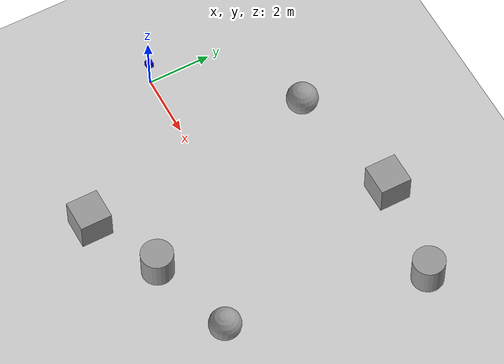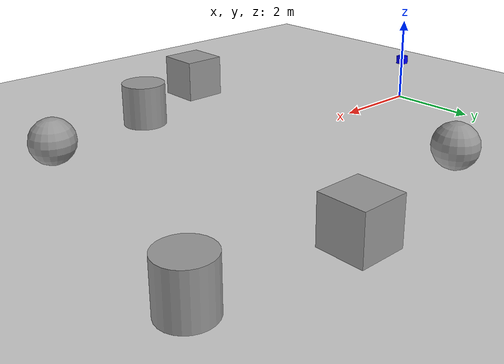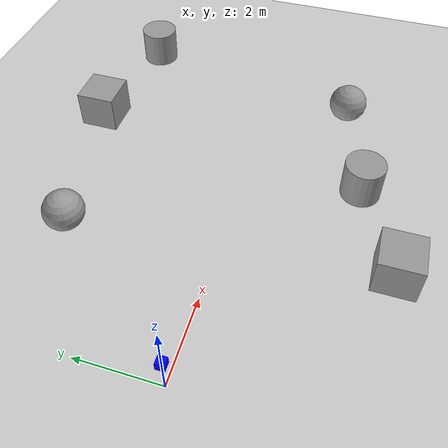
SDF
<sdf version='1.7'>
  <world name='default'>
    <light name='sun' type='directional'>
      <cast_shadows>1</cast_shadows>
      <pose>0 0 10 0 -0 0</pose>
      <diffuse>0.8 0.8 0.8 1</diffuse>
      <specular>0.2 0.2 0.2 1</specular>
      <attenuation>
        <range>1000</range>
        <constant>0.9</constant>
        <linear>0.01</linear>
        <quadratic>0.001</quadratic>
      </attenuation>
      <direction>-0.5 0.1 -0.9</direction>
      <spot>
        <inner_angle>0</inner_angle>
        <outer_angle>0</outer_angle>
        <falloff>0</falloff>
      </spot>
    </light>
    <model name='ground_plane'>
      <static>1</static>
      <link name='link'>
        <collision name='collision'>
          <geometry>
            <plane>
              <normal>0 0 1</normal>
              <size>100 100</size>
            </plane>
          </geometry>
          <surface>
            <contact>
              <collide_bitmask>65535</collide_bitmask>
              <ode/>
            </contact>
            <friction>
              <ode>
                <mu>100</mu>
                <mu2>50</mu2>
              </ode>
              <torsional>
                <ode/>
              </torsional>
            </friction>
            <bounce/>
          </surface>
          <max_contacts>10</max_contacts>
        </collision>
        <visual name='visual'>
          <cast_shadows>0</cast_shadows>
          <geometry>
            <plane>
              <normal>0 0 1</normal>
              <size>100 100</size>
            </plane>
          </geometry>
          <material>
            <script>
              <uri>file://media/materials/scripts/gazebo.material</uri>
              <name>Gazebo/Grey</name>
            </script>
          </material>
        </visual>
        <self_collide>0</self_collide>
        <enable_wind>0</enable_wind>
        <kinematic>0</kinematic>
      </link>
    </model>
    <gravity>0 0 -9.8</gravity>
    <magnetic_field>6e-06 2.3e-05 -4.2e-05</magnetic_field>
    <atmosphere type='adiabatic'/>
    <physics type='ode'>
      <max_step_size>0.001</max_step_size>
      <real_time_factor>1</real_time_factor>
      <real_time_update_rate>1000</real_time_update_rate>
    </physics>
    <scene>
      <ambient>0.4 0.4 0.4 1</ambient>
      <background>0.7 0.7 0.7 1</background>
      <shadows>1</shadows>
    </scene>
    <wind/>
    <spherical_coordinates>
      <surface_model>EARTH_WGS84</surface_model>
      <latitude_deg>0</latitude_deg>
      <longitude_deg>0</longitude_deg>
      <elevation>0</elevation>
      <heading_deg>0</heading_deg>
    </spherical_coordinates>
    <model name='unit_sphere'>
      <pose>3.01659 3.66741 0.5 0 -0 0</pose>
      <link name='link'>
        <inertial>
          <mass>1</mass>
          <inertia>
            <ixx>0.001</ixx>
            <iyy>0.001</iyy>
            <izz>0.001</izz>
            <ixy>0.0</ixy>
            <ixz>0.0</ixz>
            <iyz>0.0</iyz>
          </inertia>
          <pose>0 0 0 0 -0 0</pose>
        </inertial>
        <collision name='collision'>
          <geometry>
            <sphere>
              <radius>0.5</radius>
            </sphere>
          </geometry>
          <max_contacts>10</max_contacts>
          <surface>
            <contact>
              <ode/>
            </contact>
            <bounce/>
            <friction>
              <torsional>
                <ode/>
              </torsional>
              <ode/>
            </friction>
          </surface>
        </collision>
        <visual name='visual'>
          <geometry>
            <sphere>
              <radius>0.5</radius>
            </sphere>
          </geometry>
          <material>
            <script>
              <name>Gazebo/Grey</name>
              <uri>file://media/materials/scripts/gazebo.material</uri>
            </script>
          </material>
        </visual>
        <self_collide>0</self_collide>
        <enable_wind>0</enable_wind>
        <kinematic>0</kinematic>
      </link>
    </model>
    <model name='unit_box'>
      <pose>3.7705 -3.93623 0.5 0 -0 0</pose>
      <link name='link'>
        <inertial>
          <mass>1</mass>
          <inertia>
            <ixx>0.166667</ixx>
            <ixy>0</ixy>
            <ixz>0</ixz>
            <iyy>0.166667</iyy>
            <iyz>0</iyz>
            <izz>0.166667</izz>
          </inertia>
          <pose>0 0 0 0 -0 0</pose>
        </inertial>
        <collision name='collision'>
          <geometry>
            <box>
              <size>1 1 1</size>
            </box>
          </geometry>
          <max_contacts>10</max_contacts>
          <surface>
            <contact>
              <ode/>
            </contact>
            <bounce/>
            <friction>
              <torsional>
                <ode/>
              </torsional>
              <ode/>
            </friction>
          </surface>
        </collision>
        <visual name='visual'>
          <geometry>
            <box>
              <size>1 1 1</size>
            </box>
          </geometry>
          <material>
            <script>
              <name>Gazebo/Grey</name>
              <uri>file://media/materials/scripts/gazebo.material</uri>
            </script>
          </material>
        </visual>
        <self_collide>0</self_collide>
        <enable_wind>0</enable_wind>
        <kinematic>0</kinematic>
      </link>
    </model>
    <model name='unit_cylinder'>
      <pose>6.05207 -2.85998 0.5 0 -0 0</pose>
      <link name='link'>
        <inertial>
          <mass>1</mass>
          <inertia>
            <ixx>0.145833</ixx>
            <ixy>0</ixy>
            <ixz>0</ixz>
            <iyy>0.145833</iyy>
            <iyz>0</iyz>
            <izz>0.125</izz>
          </inertia>
          <pose>0 0 0 0 -0 0</pose>
        </inertial>
        <collision name='collision'>
          <geometry>
            <cylinder>
              <radius>0.5</radius>
              <length>1</length>
            </cylinder>
          </geometry>
          <max_contacts>10</max_contacts>
          <surface>
            <contact>
              <ode/>
            </contact>
            <bounce/>
            <friction>
              <torsional>
                <ode/>
              </torsional>
              <ode/>
            </friction>
          </surface>
        </collision>
        <visual name='visual'>
          <geometry>
            <cylinder>
              <radius>0.5</radius>
              <length>1</length>
            </cylinder>
          </geometry>
          <material>
            <script>
              <name>Gazebo/Grey</name>
              <uri>file://media/materials/scripts/gazebo.material</uri>
            </script>
          </material>
        </visual>
        <self_collide>0</self_collide>
        <enable_wind>0</enable_wind>
        <kinematic>0</kinematic>
      </link>
    </model>
    <model name='unit_sphere_0'>
      <pose>8.81389 -2.08254 0.5 0 -0 0</pose>
      <link name='link'>
        <inertial>
          <mass>1</mass>
          <inertia>
            <ixx>0.1</ixx>
            <ixy>0</ixy>
            <ixz>0</ixz>
            <iyy>0.1</iyy>
            <iyz>0</iyz>
            <izz>0.1</izz>
          </inertia>
          <pose>0 0 0 0 -0 0</pose>
        </inertial>
        <collision name='collision'>
          <geometry>
            <sphere>
              <radius>0.5</radius>
            </sphere>
          </geometry>
          <max_contacts>10</max_contacts>
          <surface>
            <contact>
              <ode/>
            </contact>
            <bounce/>
            <friction>
              <torsional>
                <ode/>
              </torsional>
              <ode/>
            </friction>
          </surface>
        </collision>
        <visual name='visual'>
          <geometry>
            <sphere>
              <radius>0.5</radius>
            </sphere>
          </geometry>
          <material>
            <script>
              <name>Gazebo/Grey</name>
              <uri>file://media/materials/scripts/gazebo.material</uri>
            </script>
          </material>
        </visual>
        <self_collide>0</self_collide>
        <enable_wind>0</enable_wind>
        <kinematic>0</kinematic>
      </link>
    </model>
    <model name='unit_box_0'>
      <pose>6.87648 4.4413 0.5 0 -0 0</pose>
      <link name='link'>
        <inertial>
          <mass>1</mass>
          <inertia>
            <ixx>0.166667</ixx>
            <ixy>0</ixy>
            <ixz>0</ixz>
            <iyy>0.166667</iyy>
            <iyz>0</iyz>
            <izz>0.166667</izz>
          </inertia>
          <pose>0 0 0 0 -0 0</pose>
        </inertial>
        <collision name='collision'>
          <geometry>
            <box>
              <size>1 1 1</size>
            </box>
          </geometry>
          <max_contacts>10</max_contacts>
          <surface>
            <contact>
              <ode/>
            </contact>
            <bounce/>
            <friction>
              <torsional>
                <ode/>
              </torsional>
              <ode/>
            </friction>
          </surface>
        </collision>
        <visual name='visual'>
          <geometry>
            <box>
              <size>1 1 1</size>
            </box>
          </geometry>
          <material>
            <script>
              <name>Gazebo/Grey</name>
              <uri>file://media/materials/scripts/gazebo.material</uri>
            </script>
          </material>
        </visual>
        <self_collide>0</self_collide>
        <enable_wind>0</enable_wind>
        <kinematic>0</kinematic>
      </link>
    </model>
    <model name='unit_cylinder_0'>
      <pose>10.0302 4.00978 0.5 0 -0 0</pose>
      <link name='link'>
        <inertial>
          <mass>1</mass>
          <inertia>
            <ixx>0.145833</ixx>
            <ixy>0</ixy>
            <ixz>0</ixz>
            <iyy>0.145833</iyy>
            <iyz>0</iyz>
            <izz>0.125</izz>
          </inertia>
          <pose>0 0 0 0 -0 0</pose>
        </inertial>
        <collision name='collision'>
          <geometry>
            <cylinder>
              <radius>0.5</radius>
              <length>1</length>
            </cylinder>
          </geometry>
          <max_contacts>10</max_contacts>
          <surface>
            <contact>
              <ode/>
            </contact>
            <bounce/>
            <friction>
              <torsional>
                <ode/>
              </torsional>
              <ode/>
            </friction>
          </surface>
        </collision>
        <visual name='visual'>
          <geometry>
            <cylinder>
              <radius>0.5</radius>
              <length>1</length>
            </cylinder>
          </geometry>
          <material>
            <script>
              <name>Gazebo/Grey</name>
              <uri>file://media/materials/scripts/gazebo.material</uri>
            </script>
          </material>
        </visual>
        <self_collide>0</self_collide>
        <enable_wind>0</enable_wind>
        <kinematic>0</kinematic>
      </link>
    </model>
    <gui fullscreen='0'>
      <camera name='user_camera'>
        <pose>16.2105 -9.49121 5.05092 0 0.275643 2.35619</pose>
        <view_controller>orbit</view_controller>
        <projection_type>perspective</projection_type>
      </camera>
    </gui>
    <!-- 3) The “vehicle” is still a 0.2×0.2×0.2 blue box,
          but now it carries a DVS sensor on its front. -->
    <model name="camera_model">
      <static>false</static> <!-- ✅ Add this to make the model movable -->
      <pose>0 0 1.0 0 0 0</pose>

      <link name="link">
        <pose>0 0 0 0 0 0</pose>

        <!-- ✅ Add inertial properties -->
        <inertial>
          <mass>1.0</mass>
          <inertia>
            <ixx>0.001</ixx>
            <iyy>0.001</iyy>
            <izz>0.001</izz>
            <ixy>0.0</ixy>
            <ixz>0.0</ixz>
            <iyz>0.0</iyz>
          </inertia>
        </inertial>

        <collision name="collision">
          <geometry>
            <box>
              <size>0.2 0.2 0.2</size>
            </box>
          </geometry>
        </collision>

        <visual name="vis">
          <geometry>
            <box>
              <size>0.2 0.2 0.2</size>
            </box>
          </geometry>
          <material>
            <ambient>0 0 1 1</ambient>
            <diffuse>0 0 1 1</diffuse>
          </material>
        </visual>

        <sensor name="dvs_cam" type="camera">
          <pose>0 0 0 0 0 0</pose>
          <camera name="__default__">
            <horizontal_fov>1.047</horizontal_fov>
            <image>
              <width>128</width>
              <height>128</height>
              <format>R8G8B8</format>
            </image>
            <clip>
              <near>0.1</near>
              <far>100</far>
            </clip>
          </camera>
          <visualize>0</visualize>
          <plugin name="dvs_plugin" filename="libgazebo_dvs_plugin.so">
            <cameraName>front_cam</cameraName>
            <robotNamespace>lane_demo</robotNamespace>
            <eventThreshold>10</eventThreshold>
            <cameraInfoTopicName>camera_info</cameraInfoTopicName>
          </plugin>
        </sensor>

        <plugin name="drive_plugin" filename="libgazebo_ros_planar_move.so">
          <ros>
            <namespace>/lane_demo</namespace>
            <remapping>cmd_vel:=cmd_vel</remapping>
          </ros>
          <bodyName>link</bodyName>
          <topicName>cmd_vel</topicName>
          <odometryTopicName>odom</odometryTopicName>
          <updateRate>100.0</updateRate>
          <linearSpeedGain>1.0</linearSpeedGain>
          <angularSpeedGain>4.0</angularSpeedGain>
        </plugin>
      </link>
    </model>
  </world>
</sdf>
